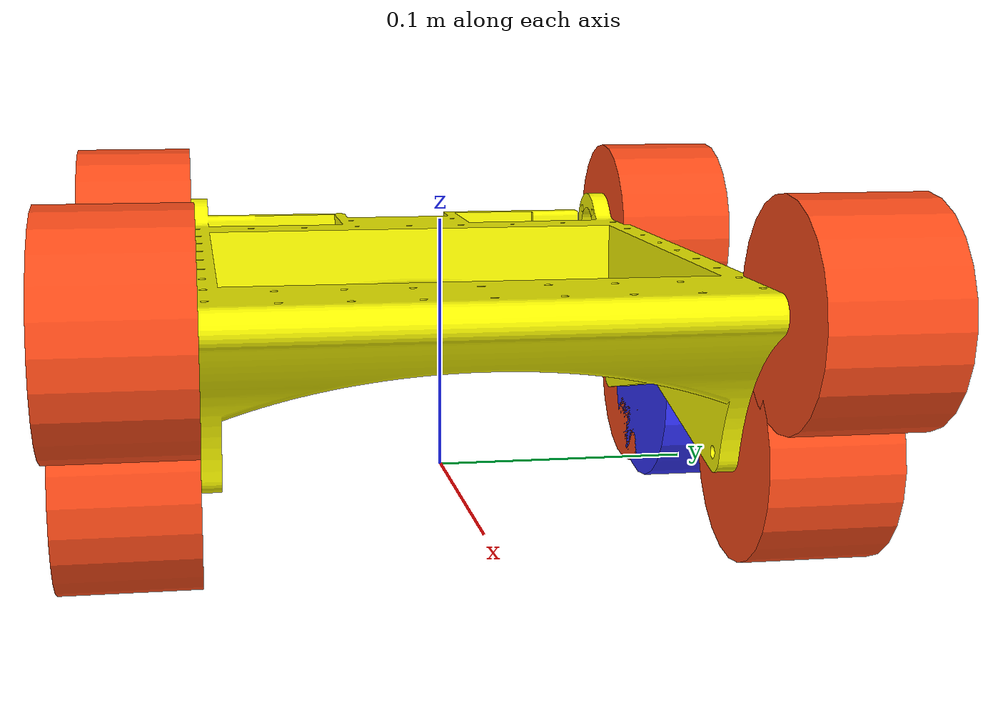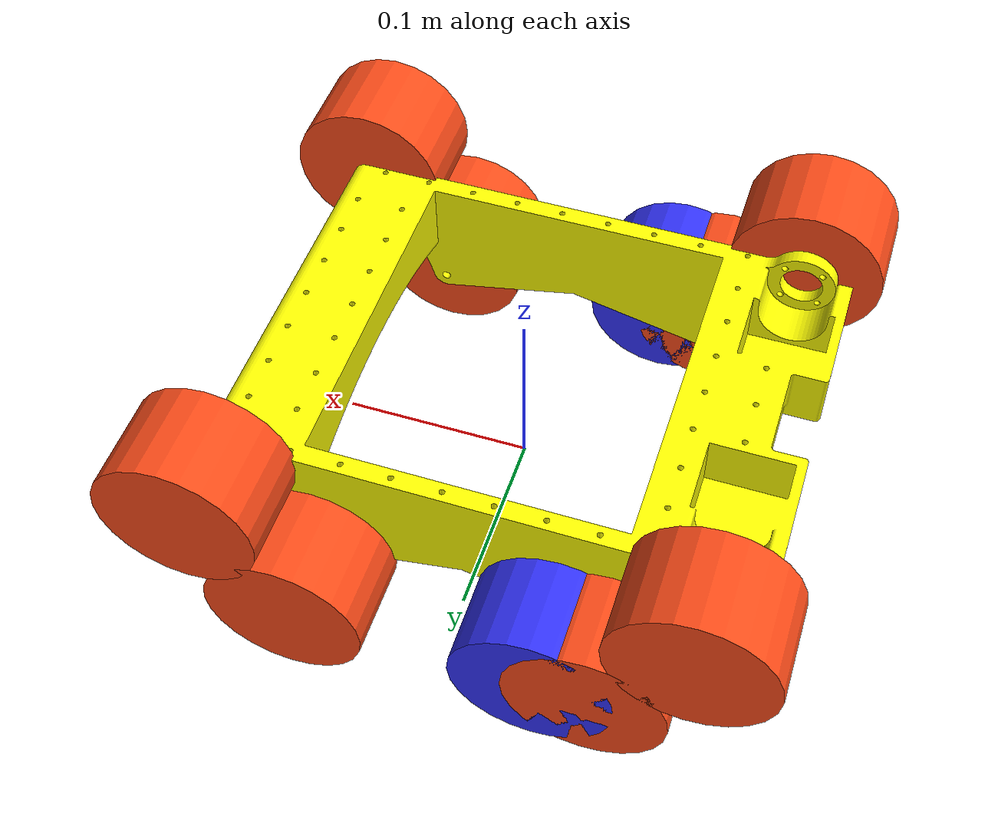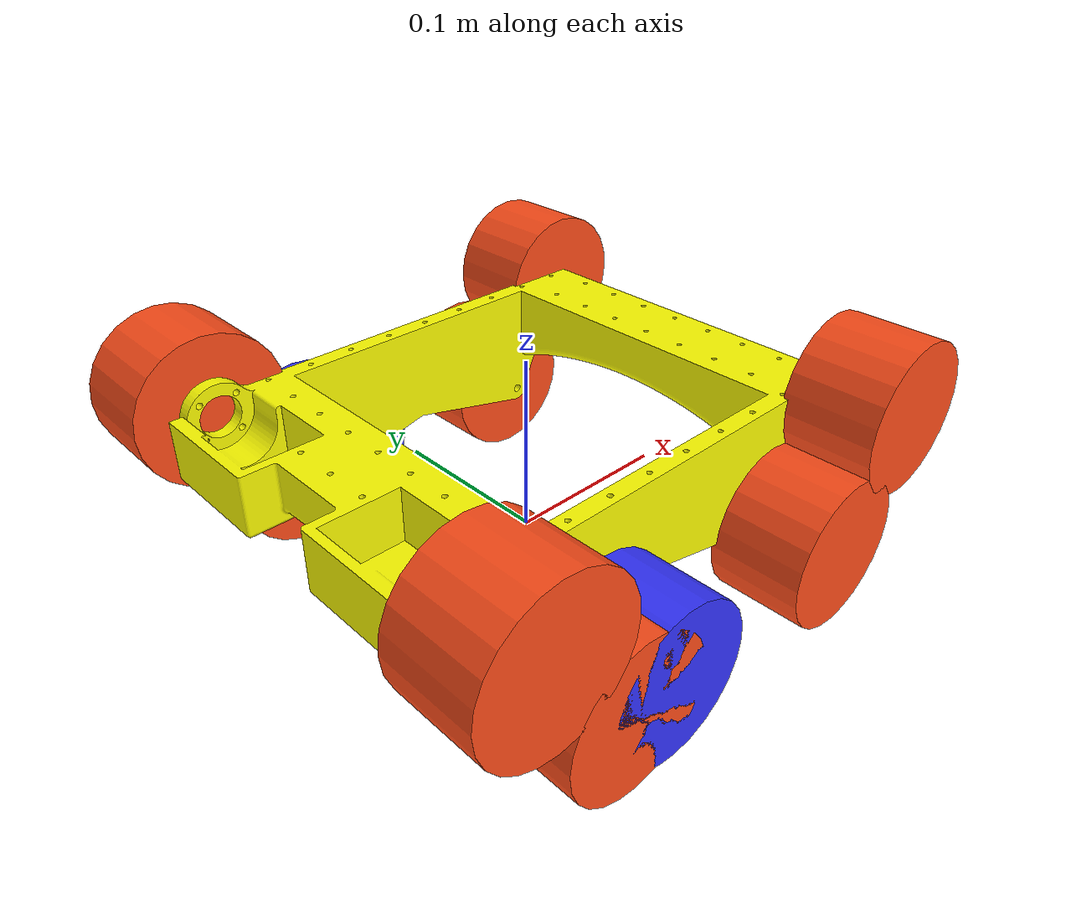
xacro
<?xml version="1.0"?>
<robot xmlns:xacro="http://www.ros.org/wiki/xacro">
    <xacro:include filename="inertial_macros.xacro" />

    <material name="white">
        <color rgba="1 1 1 1"/>
    </material>

    <material name="orange">
        <color rgba="1 0.3 0.1 1"/>
    </material>

    <material name="blue">
        <color rgba="0.2 0.2 1 1"/>
    </material>

    <material name="black">
        <color rgba="0 0 0 1"/>
    </material>

    <material name="red">
        <color rgba="1 0 0 1"/>
    </material>

    <material name="yellow">
        <color rgba="1 1 0 1"/>
    </material>

    <xacro:macro name="robot_wheel">
        <visual>
            <geometry>
                <cylinder radius="0.0411" length="0.05" />
            </geometry>
            <material name="orange" />
        </visual>
        <collision>
            <geometry>
                <cylinder radius="0.0411" length="0.05" />
            </geometry>
        </collision>
    </xacro:macro>

    <link name="base_link">

    </link>

    <joint name="base_footprint_joint" type="fixed">
        <parent link="base_link" />
        <child link="base_footprint" />
        <origin xyz="0 0 0" rpy="0 0 0" />
    </joint>

    <link name="base_footprint">
    </link>

    <!-- CHASSIS LINK -->
    <!-- Note 0.0206 is to offset the wheels onto the ground -->

    <joint name="chassis_joint" type="fixed">
        <parent link="base_link" />
        <child link="chassis" />
        <origin xyz="0 0 ${0.066345 + 0.0206}" />
    </joint>

    <link name="chassis">
        <visual>
            <origin xyz="0.0475 -0.090 0" rpy="0 0 -${pi/2}" />
            <geometry>
                <mesh filename="file://$(find robot_tank_desc)/stl/robot_frame.stl" scale="0.001 0.001 0.001" />
            </geometry>
            <material name="yellow" />
        </visual>
        <collision>
            <origin xyz="0 0 -0.037" />
            <geometry>
                <box size="0.261 0.195 0.074" />
            </geometry>
        </collision>
        <xacro:inertial_box mass="0.5" x="0.356" y="0.195" z="0.074">
            <origin xyz="0 0 0.0" rpy="0 0 0" />
        </xacro:inertial_box>
    </link>

    <!-- LEFT WHEEL LINK -->

    <!-- Wheels have r=30.6mm and track is 10.6mm wide, so total radius of 41.2mm -->
    <!-- The track is 50mm wide -->
    <joint name="left_wheel_joint" type="continuous">
        <parent link="base_link" />
        <child link="left_wheel" />
        <!-- Note the wheel is offset on X to account for the center of gravity/turn radius being towards the back of the robot -->
        <origin xyz="-0.05 0.1225 0.0206" rpy="-${pi/2} 0 0" />
        <axis xyz="0 0 1" />
    </joint>

    <link name="left_wheel">
        <visual>
            <geometry>
                <cylinder radius="0.0412" length="0.05" />
            </geometry>
            <material name="blue" />
        </visual>
        <collision>
            <geometry>
                <cylinder radius="0.0412" length="0.05" />
            </geometry>
        </collision>
        <xacro:inertial_cylinder mass="0.1" length="0.05" radius="0.0412">
            <origin xyz="0 0 0" rpy="0 0 0" />
        </xacro:inertial_cylinder>
    </link>

    <!-- RIGHT WHEEL LINK -->
    <joint name="right_wheel_joint" type="continuous">
        <parent link="base_link" />
        <child link="right_wheel" />
        <!-- Note the wheel is offset on X to account for the center of gravity/turn radius being towards the back of the robot -->
        <origin xyz="-0.05 -0.1225 0.0206" rpy="${pi/2} 0 0" />
        <axis xyz="0 0 -1" />
    </joint>

    <link name="right_wheel">
        <visual>
            <geometry>
                <cylinder radius="0.0412" length="0.05" />
            </geometry>
            <material name="blue" />
        </visual>
        <collision>
            <geometry>
                <cylinder radius="0.0412" length="0.05" />
            </geometry>
        </collision>
        <xacro:inertial_cylinder mass="0.1" length="0.05" radius="0.0412">
            <origin xyz="0 0 0" rpy="0 0 0" />
        </xacro:inertial_cylinder>
    </link>

    <!-- DUMMY WHEELS AT FRONT AND BACK -->

    <joint name="front_left_bottom_wheel_joint" type="fixed">
        <parent link="base_link" />
        <child link="front_left_bottom_wheel" />
        <origin xyz="0.0763 -0.1225 0.0206" rpy="-${pi/2} 0 0" />
        <axis xyz="0 0 1" />
    </joint>

    <link name="front_left_bottom_wheel">
        <xacro:robot_wheel />
    </link>

    <joint name="front_left_top_wheel_joint" type="fixed">
        <parent link="base_link" />
        <child link="front_left_top_wheel" />
        <origin xyz="0.1230 -0.1225 ${0.058845 + 0.0206}" rpy="-${pi/2} 0 0" />
        <axis xyz="0 0 1" />
    </joint>

    <link name="front_left_top_wheel">
        <xacro:robot_wheel />
    </link>

    <joint name="front_right_bottom_wheel_joint" type="fixed">
        <parent link="base_link" />
        <child link="front_right_bottom_wheel" />
        <origin xyz="0.0763 0.1225 0.0206" rpy="-${pi/2} 0 0" />
        <axis xyz="0 0 -1" />
    </joint>

    <link name="front_right_bottom_wheel">
        <xacro:robot_wheel />
    </link>

    <joint name="front_right_top_wheel_joint" type="fixed">
        <parent link="base_link" />
        <child link="front_right_top_wheel" />
        <origin xyz="0.1230 0.1225 ${0.058845 + 0.0206}" rpy="-${pi/2} 0 0" />
        <axis xyz="0 0 1" />
    </joint>

    <link name="front_right_top_wheel">
        <xacro:robot_wheel />
    </link>

    <joint name="back_left_bottom_wheel_joint" type="fixed">
        <parent link="base_link" />
        <child link="back_left_bottom_wheel" />
        <origin xyz="-0.0763 -0.1225 0.0206" rpy="-${pi/2} 0 0" />
        <axis xyz="0 0 1" />
    </joint>

    <link name="back_left_bottom_wheel">
        <xacro:robot_wheel />
    </link>

    <joint name="back_left_top_wheel_joint" type="fixed">
        <parent link="base_link" />
        <child link="back_left_top_wheel" />
        <origin xyz="-0.1230 -0.1225 ${0.058845 + 0.0206}" rpy="-${pi/2} 0 0" />
        <axis xyz="0 0 1" />
    </joint>

    <link name="back_left_top_wheel">
        <xacro:robot_wheel />
    </link>

    <joint name="back_right_bottom_wheel_joint" type="fixed">
        <parent link="base_link" />
        <child link="back_right_bottom_wheel" />
        <origin xyz="-0.0763 0.1225 0.0206" rpy="-${pi/2} 0 0" />
        <axis xyz="0 0 -1" />
    </joint>

    <link name="back_right_bottom_wheel">
        <xacro:robot_wheel />
    </link>

    <joint name="back_right_top_wheel_joint" type="fixed">
        <parent link="base_link" />
        <child link="back_right_top_wheel" />
        <origin xyz="-0.1230 0.1225 ${0.058845 + 0.0206}" rpy="-${pi/2} 0 0" />
        <axis xyz="0 0 1" />
    </joint>

    <link name="back_right_top_wheel">
        <xacro:robot_wheel />
    </link>
</robot>
